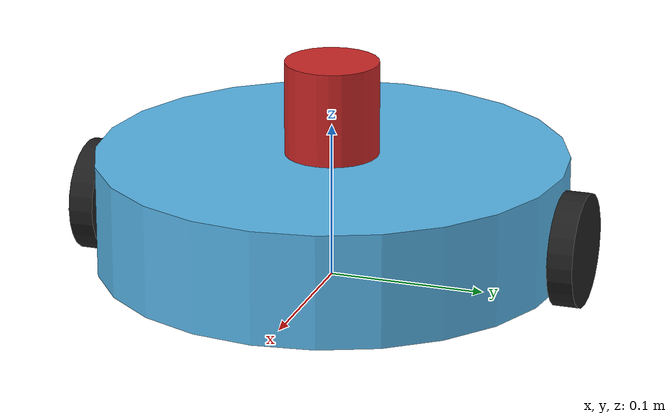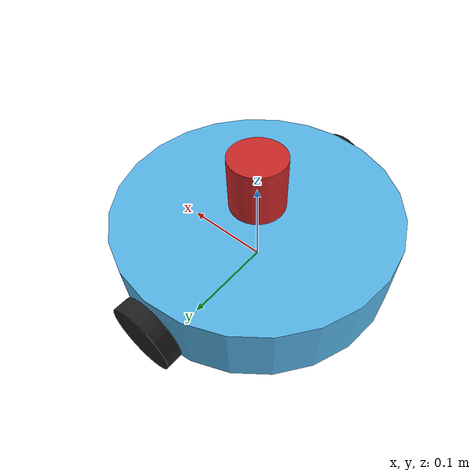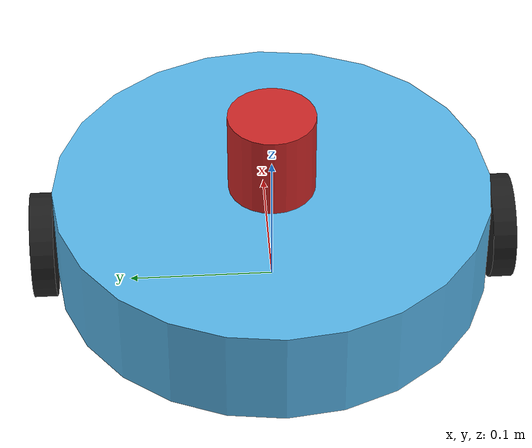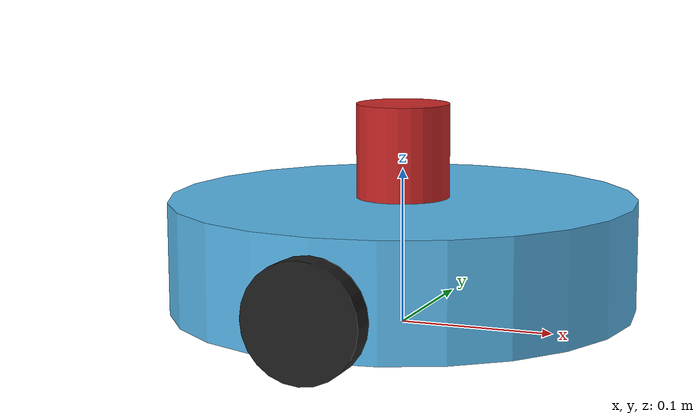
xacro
<?xml version="1.0" ?>
<robot name="simple_diff_drive" xmlns:xacro="http://ros.org/wiki/xacro">

 <xacro:include filename="$(find simple_diff_drive_simulator)/urdf/body.urdf.xacro" />
 <xacro:include filename="$(find simple_diff_drive_simulator)/urdf/wheel.urdf.xacro" />

 <xacro:include filename="$(find simple_diff_drive_simulator)/urdf/lidar.urdf.xacro" />

  <gazebo>
    <plugin name="gazebo_ros_control" filename="libgazebo_ros_control.so">
      <robotSimType>gazebo_ros_control/DefaultRobotHWSim</robotSimType>
      <legacyModeNS>true</legacyModeNS>
    </plugin>
  </gazebo>

 <xacro:wheel rl="r" parent="base_link" />
 <xacro:wheel rl="l" parent="base_link" />

 <xacro:laser_macro prefix="lidar" parent="base_link" xyz="0.0 0 0.112" />
</robot>

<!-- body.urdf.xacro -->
<robot name="body" xmlns:xacro="http://ros.org/wiki/xacro">
<link name="base_link" />

<xacro:property name="b_r" value="0.15"/>
<xacro:property name="b_l" value="0.072"/>
<xacro:property name="b_m" value="3.0"/>

<link name="body">
   <visual>
　　<geometry>
　　　<cylinder radius="${b_r}" length="${b_l}"/>
     </geometry>
  </visual>
   <collision>
　　<geometry>
　　　<cylinder radius="${b_r*0.95}" length="${b_l*0.95}"/>
     </geometry>
  </collision>
  <inertial>
     <origin xyz="0 0 0" rpy="0 0 0" />
     <mass value="${b_m}" />
     <!-- https://mathwords.net/entyukansei -->
    <inertia ixx="${1.0/2.0*b_m*(b_r*b_r)}" ixy="0"    ixz="0"
                 iyx="0"   iyy="${1.0/2.0*b_m*(b_r*b_r)}"  iyz="0"
		 izx="0"   izy="0"  izz="${1.0/2.0*b_m*(b_r*b_r)}" />
  </inertial>
</link>

<joint name="body_joint" type="fixed">
    <parent link="base_link" />
    <child link="body" />
    <origin xyz="0 0 0.0460" rpy="0 0 0" />
</joint>

<!--support wheel-->
  <joint name="ball_joint_1" type="fixed">
    <parent link="base_link"/>
    <child  link="ball_link_1"/>
    <origin xyz="0.110 0 0.01" rpy="0 0 0"/>
  </joint>
  <link name="ball_link_1">
    <visual>
      <origin xyz="0 0 0" rpy="0 0 0" />
      <geometry>
        <sphere radius="0.01" />
      </geometry>
    </visual>
    <collision>
      <origin xyz="0 0 0" rpy="0 0 0" />
      <geometry>
        <sphere radius="0.01" />
      </geometry>
    </collision>
  </link>
  <gazebo reference="ball_link_1">
    <material>Gazebo/Gray</material>
    <mu1 value="0.5" />
    <mu2 value="0.5" />
  </gazebo>

  <joint name="ball_joint_2" type="fixed">
    <parent link="base_link"/>
    <child  link="ball_link_2"/>
    <origin xyz="-0.110 0 0.01" rpy="0 0 0"/>
  </joint>
  <link name="ball_link_2">
    <visual>
      <origin xyz="0 0 0" rpy="0 0 0" />
      <geometry>
        <sphere radius="0.01" />
      </geometry>
    </visual>
    <collision>
      <origin xyz="0 0 0" rpy="0 0 0" />
      <geometry>
        <sphere radius="0.01" />
      </geometry>
    </collision>
  </link>
  <gazebo reference="ball_link_2">
    <material>Gazebo/Gray</material>
    <mu1 value="0.5" />
    <mu2 value="0.5" />
  </gazebo>

</robot>

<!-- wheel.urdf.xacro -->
<robot name="wheel" xmlns:xacro="http://ros.org/wiki/xacro" >

<xacro:property name="PI" value="3.1415926535897931"/>
<xacro:property name="wheel_radius" value="0.036"/>
<xacro:property name="wheel_height" value="0.016"/>
<xacro:property name="wheel_mass" value="0.10"/>

<xacro:macro name="wheel" params="rl parent">
   <link name="wheel_${rl}">
   <visual>
   <geometry>
      <cylinder length="${wheel_height}" radius="${wheel_radius}" />
   </geometry>
   </visual>
      <collision>
   　　<geometry>
   　　　<cylinder radius="${wheel_radius}" length="${wheel_height}" />
      </geometry>
   </collision>
   <inertial>
      <origin xyz="0 0 0" rpy="0 0 0" />
      <mass value="${wheel_mass}" />
      <inertia ixx="${wheel_mass*(3*wheel_radius*wheel_radius+wheel_height*wheel_height)/12}"
         ixy="0"  ixz="0"
         iyx="0"  iyy="${wheel_mass*(3*wheel_radius*wheel_radius+wheel_height*wheel_height)/12}"
            iyz="0"
            izx="0"  izy="0"  izz="${wheel_mass*(wheel_radius*wheel_radius)/2}" />
   </inertial>
   </link>

   <joint name="wheel_${rl}_joint" type="continuous">
      <parent link="${parent}" />
      <child link="wheel_${rl}" />
      <xacro:if value="${rl == 'r'}">
         <origin xyz="0.0 -0.158 0.036" rpy="${PI/2} 0  0" />
      </xacro:if>
      <xacro:if value="${rl == 'l'}">
         <origin xyz="0.0 0.158 0.036" rpy="${PI/2} 0  0" />
      </xacro:if>
      <axis xyz="0 0 -1" />
      <limit effort="10" velocity="10" />
      <joint_properties damping="0.0" friction="0.0" />
   </joint>

    <gazebo reference="wheel_${rl}">
      <material>Gazebo/Black</material>
      <mu1 value="3.0" /> <!--friction-->
      <mu2 value="3.0" />
    </gazebo>

    <transmission name="wheel_${rl}_trans" type="SimpleTransmission">
      <type>transmission_interface/SimpleTransmission</type>
      <actuator name="wheel_${rl}_motor">
        <mechanicalReduction>1</mechanicalReduction>
      </actuator>
      <joint name="wheel_${rl}_joint">
        <hardwareInterface>hardware_interface/VelocityJointInterface</hardwareInterface>
      </joint>
    </transmission>

</xacro:macro>
</robot>

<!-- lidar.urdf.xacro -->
<robot name="lidar" xmlns:xacro="http://ros.org/wiki/xacro">
  <xacro:macro name="laser_macro" params="parent prefix xyz">
    <joint name="${prefix}_joint" type="fixed">
      <parent link="${parent}"/>
      <child  link="${prefix}_link"/>
      <origin xyz="${xyz}" rpy="0 0 0"/>
    </joint>
    <link name="${prefix}_link">
      <visual>
        <origin xyz="0 0 0" rpy="0 0 0" />
        <geometry>
          <cylinder radius="0.03" length="0.06" />
        </geometry>
      </visual>
      <collision>
        <origin xyz="0 0 0" rpy="0 0 0"/>
        <geometry>
          <cylinder radius="0.03" length="0.06" />
        </geometry>
      </collision>
    </link>
    <gazebo reference="${prefix}_link">
      <material>Gazebo/Red</material>
      <sensor type="ray" name="${prefix}">
        <pose>0 0 0 0 0 0</pose>
        <visualize>false</visualize>
        <update_rate>30</update_rate>
        <ray>
          <scan>
            <horizontal>
              <samples>400</samples>
              <resolution>1</resolution>
              <min_angle>${radians(-180)}</min_angle>
              <max_angle>${radians(180)}</max_angle>
            </horizontal>
          </scan>
          <range>
            <min>0.10</min>
            <max>20.0</max>
            <resolution>0.01</resolution>
          </range>
          <noise>
            <type>gaussian</type>
            <mean>0.0</mean>
            <stddev>0.01</stddev>
          </noise>
        </ray>
        <plugin name="gazebo_ros_lidar_controller" filename="libgazebo_ros_laser.so">
          <topicName>/scan</topicName>
          <frameName>${prefix}_link</frameName>
        </plugin>
      </sensor>
    </gazebo>
  </xacro:macro>
</robot>
